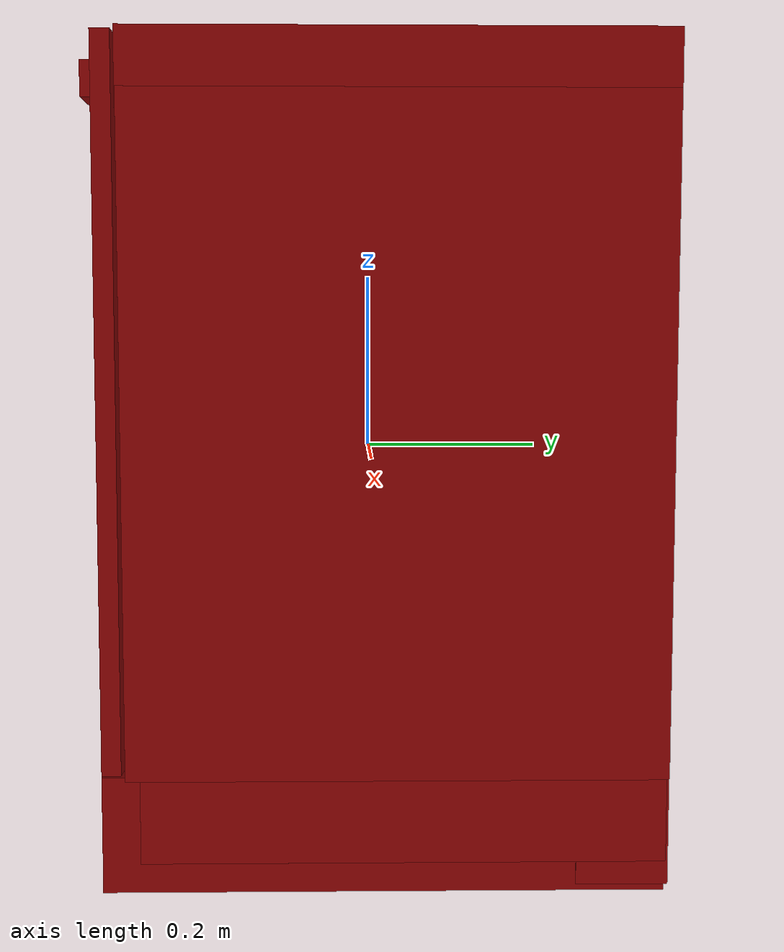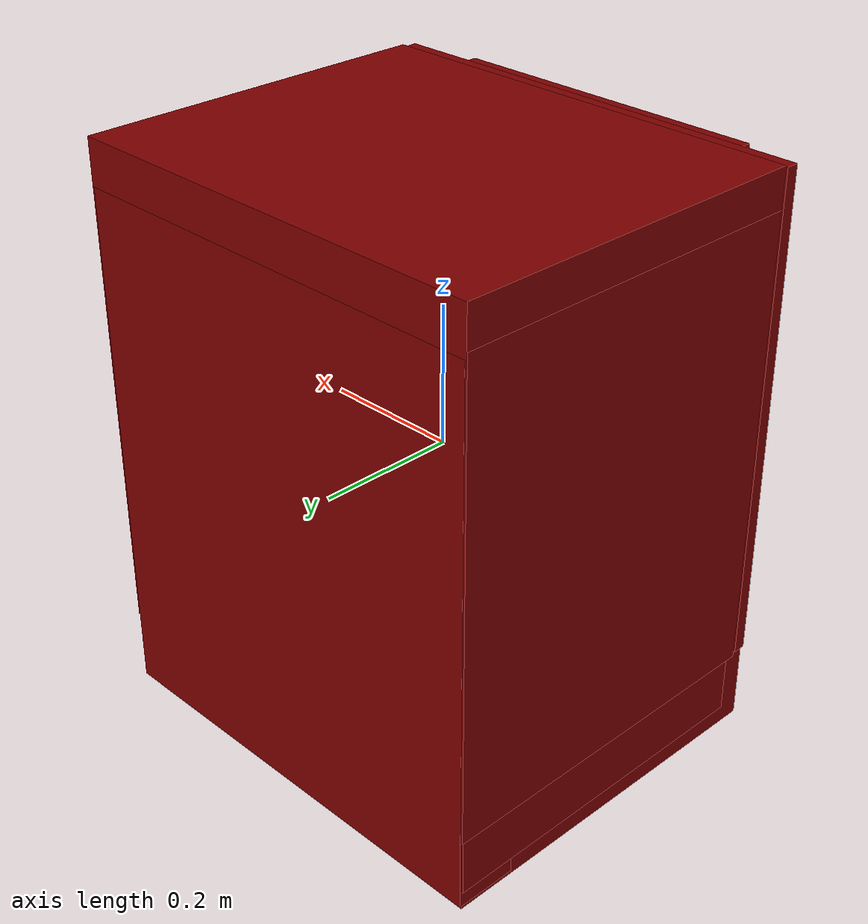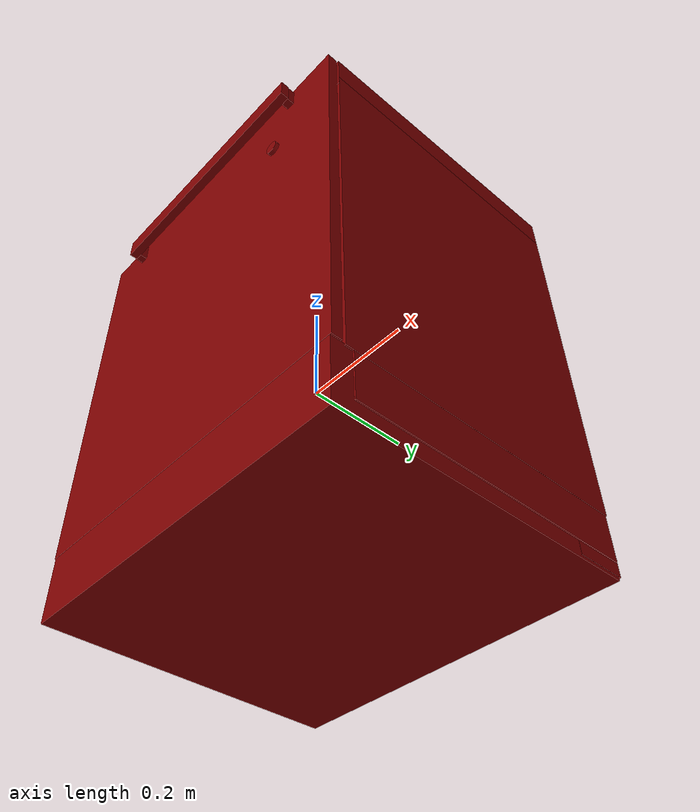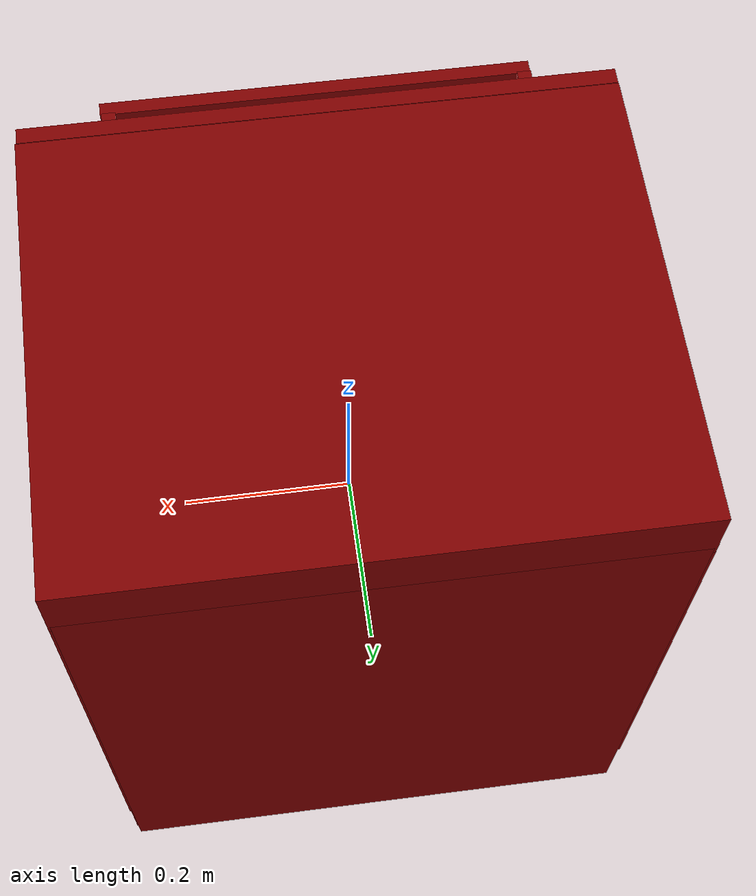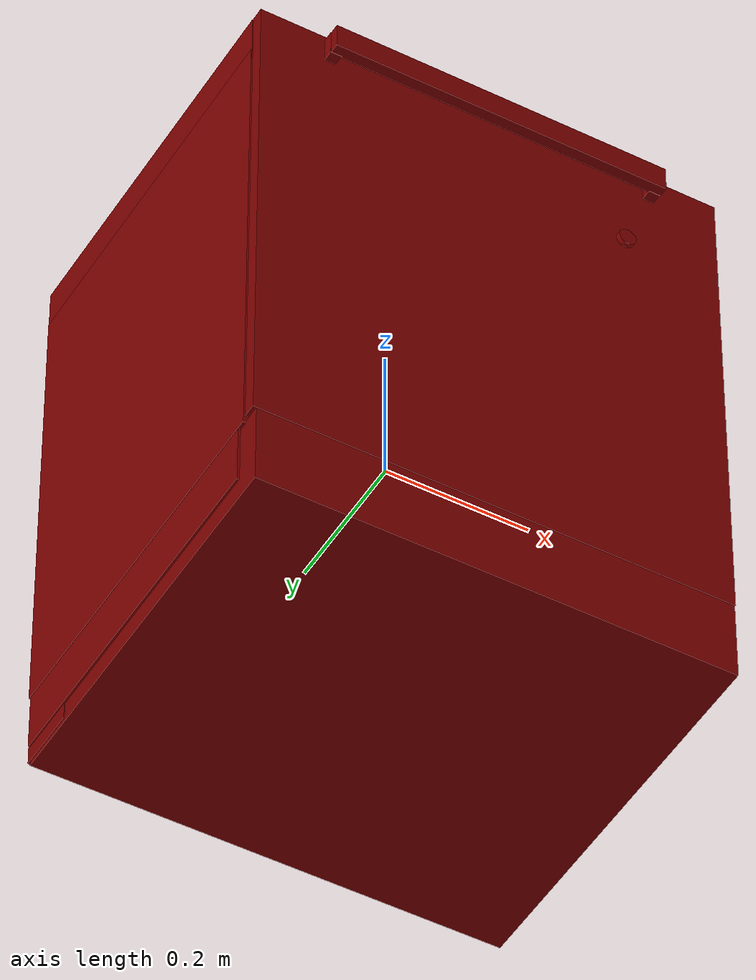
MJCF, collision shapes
<?xml version='1.0' encoding='UTF-8'?>
<mujoco model="model">
  <option timestep="0.002" gravity="0.0 0.0 -9.81"/>
  <compiler angle="radian"/>
  <asset>
    <mesh file="visuals/button_power.obj" name="button_power_vis"/>
    <mesh file="visuals/Body001.obj" name="Body001_vis"/>
    <mesh file="visuals/door.obj" name="door_vis"/>
    <mesh file="visuals/rack0.obj" name="rack0_vis"/>
    <mesh file="visuals/rack1.obj" name="rack1_vis"/>
    <texture file="visuals/T_BC001.png" name="Body001_material" type="2d"/>
    <material name="Body001_material" rgba="1 1 1 1.0" texture="Body001_material" shininess="0.4472135901451111" specular="2"/>
    <texture file="visuals/T_BC001.png" name="door_material" type="2d"/>
    <material name="door_material" rgba="1 1 1 1.0" texture="door_material" shininess="0.4472135901451111" specular="2"/>
    <texture file="visuals/T_BC001.png" name="button_power_material" type="2d"/>
    <material name="button_power_material" rgba="1 1 1 1.0" texture="button_power_material" shininess="0.4472135901451111" specular="0.3103448502657381"/>
    <texture file="visuals/T_BC001.png" name="rack0_material" type="2d"/>
    <material name="rack0_material" rgba="1 1 1 1.0" texture="rack0_material" shininess="0.4472135901451111" specular="3"/>
    <texture file="visuals/T_BC001.png" name="rack1_material" type="2d"/>
    <material name="rack1_material" rgba="1 1 1 1.0" texture="rack1_material" shininess="0.4472135901451111" specular="3"/>
  </asset>
  <default>
    <default class="visual">
      <geom conaffinity="0" contype="0" group="1" type="mesh"/>
    </default>
    <default class="collision">
      <geom group="0" rgba="0.5 0 0 0.5"/>
    </default>
    <default class="spawn">
      <geom group="0" rgba="1 1 1 0.5" contype="0" conaffinity="0"/>
      <site group="0" rgba="1 1 1 0.5"/>
    </default>
    <default class="region">
      <geom group="1" conaffinity="0" contype="0" rgba="0 1 0 0"/>
    </default>
  </default>
  <worldbody>
    <body>
      <body name="object">
        <geom mesh="Body001_vis" type="mesh" solimp="0.998 0.998 0.001" solref="0.001 1" friction="0.95 0.3 0.1" class="visual" material="Body001_material"/>
        <geom class="collision" type="box" pos="0.00030140 0.02389507 0.37319675" size="0.3241718113422394 0.2623805105686188 0.03749765828251839" quat="1.0 0.0 0.0 0.0"/>
        <geom class="collision" type="box" pos="-0.00013154 0.02784455 -0.37718707" size="0.2258249670267105 0.25575584173202515 0.027631359174847603" quat="1.0 0.0 0.0 0.0"/>
        <geom class="collision" type="box" pos="0.00033650 0.24152413 -0.02953525" size="0.32177069783210754 0.04475322365760803 0.3752831220626831" quat="1.0 0.0 0.0 0.0"/>
        <geom class="collision" type="box" pos="-0.29642539 0.02409400 0.02753938" size="0.028184674680233 0.2620052695274353 0.32767951488494873" quat="1.0 0.0 0.0 0.0"/>
        <geom class="collision" type="box" pos="0.00062643 0.01072511 -0.35362232" size="0.32096144556999207 0.2716312110424042 0.057106491178274155" quat="1.0 0.0 0.0 0.0"/>
        <geom class="collision" type="box" pos="0.29643814 0.02408245 0.02753938" size="0.028107836842536926 0.262018620967865 0.3276772201061249" quat="1.0 0.0 0.0 0.0"/>
        <geom class="collision" type="box" pos="0.00017433 0.02983138 -0.32392225" size="0.3238521218299866 0.25376901030540466 0.057324379682540894" quat="1.0 0.0 0.0 0.0"/>
        <body name="door">
          <joint axis="1.0 0.0 0.0" pos="-0.00058365 -0.2605578199362683 -0.2948990782414246" limited="true" name="door_joint" range="0.0 0.6035987755982988" type="hinge" damping="1" frictionloss="10" armature="1" stiffness="2"/>
          <geom mesh="door_vis" type="mesh" solimp="0.998 0.998 0.001" solref="0.001 1" friction="0.95 0.3 0.1" class="visual" material="door_material"/>
          <geom class="collision" type="box" pos="-0.00058365 -0.25117743 0.05636367" size="0.3238801658153534 0.00938038993626833 0.35126274824142456" quat="1.0 0.0 0.0 0.0" name="door_main"/>
          <geom class="collision" type="box" pos="0.22500280 -0.26813814 0.38242674" size="0.007661687675863504 0.007838113233447075 0.018211202695965767" quat="1.0 0.0 0.0 0.0"/>
          <geom class="collision" type="box" pos="-0.22768435 -0.26813814 0.38242674" size="0.007661694195121527 0.007838113233447075 0.018211202695965767" quat="1.0 0.0 0.0 0.0"/>
          <geom class="collision" type="box" pos="-0.00032233 -0.28171841 0.38242674" size="0.23420876264572144 0.0078882509842515 0.018211202695965767" quat="1.0 0.0 0.0 0.0" name="door_handle_main"/>
          <body name="button_power">
            <joint axis="0.0 1.0 0.0" pos="0.18770668 -0.26418651 0.26965258" limited="true" name="button_power_joint" range="0.0 0.005" type="slide" damping="1" frictionloss="1" armature=".01" stiffness="4" springref="-1"/>
            <geom mesh="button_power_vis" type="mesh" solimp="0.998 0.998 0.001" solref="0.001 1" friction="0.95 0.3 0.1" class="visual" material="button_power_material"/>
            <geom class="collision" type="cylinder" pos="0.18739130 -0.26585874 0.26941481" size="0.012280789203941822 0.0036770820152014494" quat="0.7071068286895752 0.7071067690849304 0.0 0.0"/>
          </body>
        </body>
        <body name="rack0">
          <geom class="region" name="reg_rack0" type="box" pos="-0.0010184599999999988 -0.025159575000000003 -0.009068595000000006" size="0.24301277 0.16855532499999998 0.101933795"/>
          <joint axis="0.0 -1.0 0.0" pos="0.00067748 -0.02981751 -0.07494274" limited="true" name="rack0_joint" range="0.0 0.10220000000000001" type="slide" damping="1" frictionloss="1" armature=".01" stiffness="0.05"/>
          <geom mesh="rack0_vis" type="mesh" solimp="0.998 0.998 0.001" solref="0.001 1" friction="0.95 0.3 0.1" class="visual" material="rack0_material"/>
          <geom class="collision" type="box" pos="-0.00401248 -0.20689512 -0.07740616" size="0.2600034773349762 0.009127783589065075 0.05787336826324463" quat="1.0 0.0 0.0 0.0"/>
          <geom class="collision" type="box" pos="-0.00401248 0.15273116 -0.06554356" size="0.2603767514228821 0.005633148364722729 0.10665417462587357" quat="1.0 0.0 0.0 0.0"/>
          <geom class="collision" type="box" pos="-0.25563975 -0.02824667 -0.07125467" size="0.007724866736680269 0.17604725062847137 0.06402420997619629" quat="1.0 0.0 0.0 0.0"/>
          <geom class="collision" type="box" pos="0.25203775 -0.02824667 -0.07222519" size="0.007724873721599579 0.17604678869247437 0.06305371224880219" quat="1.0 0.0 0.0 0.0"/>
          <geom class="collision" type="box" pos="-0.00203079 0.06703180 -0.13657129" size="0.24161335825920105 0.09174709022045135 0.007725071627646685" quat="1.0 0.0 0.0 0.0"/>
          <geom class="collision" type="box" pos="0.14683195 0.08365471 -0.09815286" size="0.09861581772565842 0.0056329285725951195 0.05795631930232048" quat="1.0 0.0 0.0 0.0"/>
          <geom class="collision" type="box" pos="-0.14725235 0.08365471 -0.09815286" size="0.09861578047275543 0.005632931832224131 0.05795631930232048" quat="1.0 0.0 0.0 0.0"/>
          <geom class="collision" type="box" pos="0.14519751 -0.00492602 -0.09815286" size="0.12017109245061874 0.005633025895804167 0.05795631930232048" quat="1.0 0.0 0.0 0.0"/>
          <geom class="collision" type="box" pos="-0.13509324 -0.00492602 -0.09815286" size="0.11339658498764038 0.005633010063320398 0.05795631930232048" quat="1.0 0.0 0.0 0.0"/>
          <geom class="collision" type="box" pos="-0.00067629 -0.06198943 -0.17067324" size="0.2582857012748718 0.04195895418524742 0.007725079078227282" quat="1.0 0.0 0.0 0.0"/>
          <geom class="collision" type="box" pos="-0.00203079 -0.15126095 -0.12912957" size="0.2596401870250702 0.05209353193640709 0.007640751078724861" quat="0.993613600730896 0.11283618211746216 -2.5054696912384045e-17 4.834529718911992e-24"/>
          <geom class="collision" type="box" pos="-0.14493219 -0.10315627 -0.09815286" size="0.08302811533212662 0.005633037071675062 0.05795631930232048" quat="1.0 0.0 0.0 0.0"/>
          <geom class="collision" type="box" pos="-0.14493219 -0.18936168 -0.10077562" size="0.0830281674861908 0.005633035209029913 0.0605790838599205" quat="1.0 0.0 0.0 0.0"/>
          <geom class="collision" type="box" pos="0.09441809 -0.10053711 -0.14799149" size="0.1594270020723343 0.0020657272543758154 0.023965435102581978" quat="1.0 0.0 0.0 0.0"/>
          <geom class="collision" type="box" pos="-0.25245531 -0.01841703 -0.15999769" size="0.009215684607625008 0.13317756354808807 0.027904512360692024" quat="1.0 0.0 0.0 0.0"/>
          <geom class="collision" type="box" pos="0.25359313 -0.01841703 -0.16009502" size="0.009215684607625008 0.13317757844924927 0.027904512360692024" quat="1.0 0.0 0.0 0.0"/>
        </body>
        <body name="rack1">
          <geom class="region" name="reg_rack1" type="box" pos="-0.0008798899999999943 -0.026016474999999997 0.251013985" size="0.24290501 0.169726265 0.080816565"/>
          <joint axis="0.0 -1.0 0.0" pos="0.00067748 -0.02981751 0.20625708" limited="true" name="rack1_joint" range="0.0 0.2646" type="slide" damping="1" frictionloss="1" armature=".01" stiffness="0.05"/>
          <geom mesh="rack1_vis" type="mesh" solimp="0.998 0.998 0.001" solref="0.001 1" friction="0.95 0.3 0.1" class="visual" material="rack1_material"/>
          <geom class="collision" type="box" pos="-0.00401248 -0.20689512 0.20411764" size="0.26000213623046875 0.009127747267484665 0.058197181671857834" quat="1.0 0.0 0.0 0.0"/>
          <geom class="collision" type="box" pos="-0.00108492 0.15273116 0.21446595" size="0.2574491798877716 0.005633119493722916 0.10546386986970901" quat="1.0 0.0 0.0 0.0"/>
          <geom class="collision" type="box" pos="-0.25563975 -0.02824667 0.20939227" size="0.007724829018115997 0.17604677379131317 0.06347133964300156" quat="1.0 0.0 0.0 0.0"/>
          <geom class="collision" type="box" pos="0.25203775 -0.02824667 0.20887561" size="0.007724836003035307 0.17604631185531616 0.06295470148324966" quat="1.0 0.0 0.0 0.0"/>
          <geom class="collision" type="box" pos="-0.00203079 0.06703180 0.14462853" size="0.24161335825920105 0.09174684435129166 0.007725071627646685" quat="1.0 0.0 0.0 0.0"/>
          <geom class="collision" type="box" pos="0.14683195 0.08365471 0.18304695" size="0.09861632436513901 0.0056329285725951195 0.05795631930232048" quat="1.0 0.0 0.0 0.0"/>
          <geom class="collision" type="box" pos="-0.14725235 0.08365471 0.18304695" size="0.09861628711223602 0.005632931832224131 0.05795631930232048" quat="1.0 0.0 0.0 0.0"/>
          <geom class="collision" type="box" pos="0.14519751 -0.00492602 0.18304695" size="0.12017170339822769 0.005633025895804167 0.05795631930232048" quat="1.0 0.0 0.0 0.0"/>
          <geom class="collision" type="box" pos="-0.13509324 -0.00492602 0.18304695" size="0.11339658498764038 0.005632981192320585 0.05795631930232048" quat="1.0 0.0 0.0 0.0"/>
          <geom class="collision" type="box" pos="-0.00203079 -0.06198943 0.10734615" size="0.2596401870250702 0.041958894580602646 0.0034104567021131516" quat="1.0 0.0 0.0 0.0"/>
          <geom class="collision" type="box" pos="-0.00203079 -0.15126095 0.15207024" size="0.2596401870250702 0.05209353193640709 0.007640751078724861" quat="0.993613600730896 0.11283618211746216 -2.5054696912384045e-17 4.834529718911992e-24"/>
          <geom class="collision" type="box" pos="-0.14493219 -0.10315627 0.18304695" size="0.08302811533212662 0.005633065942674875 0.05795631930232048" quat="1.0 0.0 0.0 0.0"/>
          <geom class="collision" type="box" pos="-0.14493219 -0.18727237 0.18304695" size="0.0830281674861908 0.005633064080029726 0.05795631930232048" quat="1.0 0.0 0.0 0.0"/>
          <geom class="collision" type="box" pos="0.09441809 -0.10053711 0.13320832" size="0.15942618250846863 0.0020657272543758154 0.02396531216800213" quat="1.0 0.0 0.0 0.0"/>
          <geom class="collision" type="box" pos="-0.25245531 -0.01841703 0.12107934" size="0.009215684607625008 0.13317754864692688 0.027904512360692024" quat="1.0 0.0 0.0 0.0"/>
          <geom class="collision" type="box" pos="0.25359313 -0.01841703 0.12107934" size="0.009215684607625008 0.13317756354808807 0.027904512360692024" quat="1.0 0.0 0.0 0.0"/>
        </body>
        <geom class="region" name="reg_int" type="box" pos="-0.0006080099999999922 -0.014408094999999996 0.025671584999999997" size="0.25925405 0.206986715 0.288152395"/>
        <geom class="region" name="reg_main" type="box" pos="-1.950000000083829e-07 0.012685799999999997 -7.44999999996443e-07" size="0.325609935 0.27459065000000005 0.411728035"/>
      </body>
    </body>
  </worldbody>
  <actuator>
    <motor name="door_joint_actuator" joint="door_joint" gear="50"/>
    <motor name="rack0_joint_actuator" joint="rack0_joint" gear="50"/>
    <motor name="rack1_joint_actuator" joint="rack1_joint" gear="50"/>
    <motor name="button_power_joint_actuator" joint="button_power_joint" gear="0.5"/>
  </actuator>
</mujoco>
